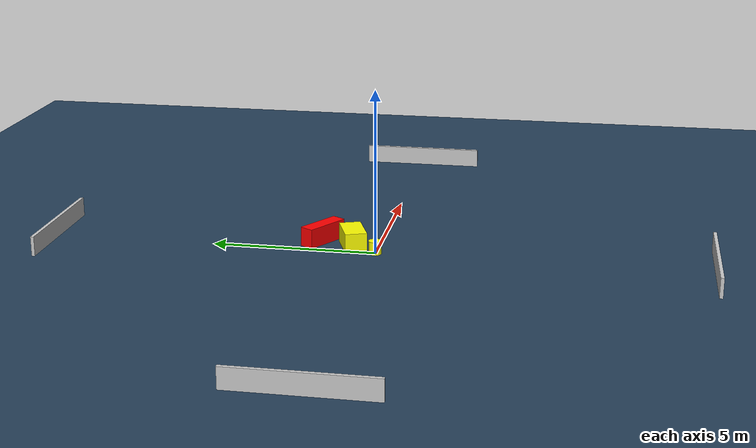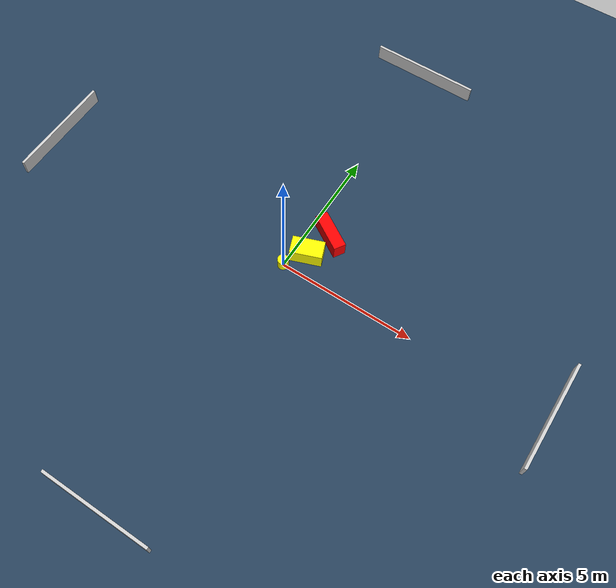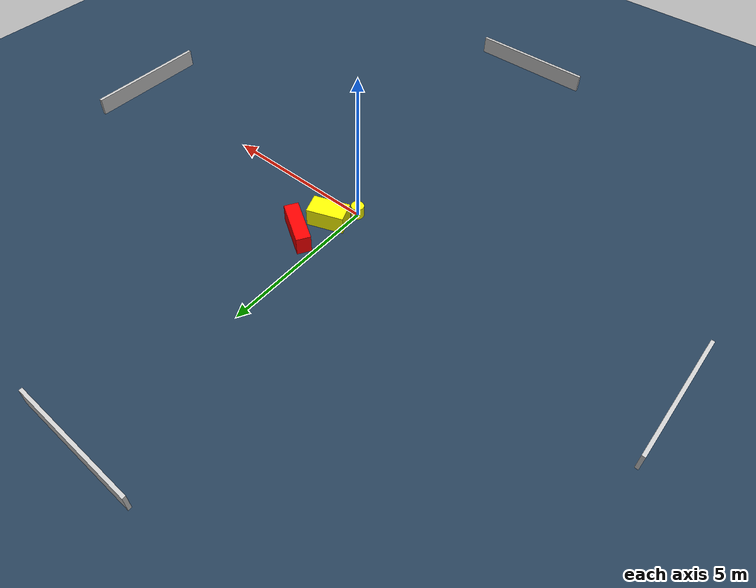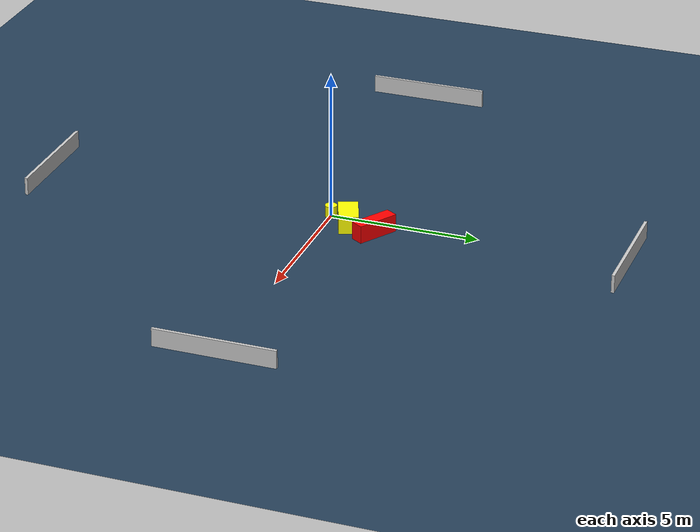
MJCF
<?xml version="1.0" ?>
<mujoco model="generated_environment">
  <option timestep="0.01" integrator="RK4" cone="elliptic"/>
  <default>
    <geom density="1"/>
  </default>
  <asset>
    <texture builtin="gradient" height="3072" name="skybox" rgb1="0.3 0.5 0.7" rgb2="0 0 0" type="skybox" width="512"/>
    <texture builtin="checker" height="300" name="groundplane" rgb1="0.2 0.3 0.4" rgb2="0.1 0.2 0.3" type="2d" width="300"/>
    <material name="groundplane" reflectance="0.2" texrepeat="5 5" texture="groundplane"/>
  </asset>
  <worldbody>
    <light dir="0 0 -1" directional="true" pos="0 0 1.5"/>
    <geom condim="3" friction="0.5 0.005 0.001" material="groundplane" name="floor" pos="0 0 0" size="0 0 0.05" type="plane"/>
    <body name="walls">
      <geom name="wall_1" condim="4" pos="-10.0 0.0 0.3" rgba="0.800000011920929 0.800000011920929 0.800000011920929 1.0" size="0.05 2.0 0.3" type="box"/>
      <geom name="wall_2" condim="4" pos="10.0 0.0 0.3" rgba="0.800000011920929 0.800000011920929 0.800000011920929 1.0" size="0.05 2.0 0.3" type="box"/>
      <geom name="wall_3" condim="4" pos="0.0 -10.0 0.3" rgba="0.800000011920929 0.800000011920929 0.800000011920929 1.0" size="2.0 0.05 0.3" type="box"/>
      <geom name="wall_4" condim="4" pos="0.0 10.0 0.3" rgba="0.800000011920929 0.800000011920929 0.800000011920929 1.0" size="2.0 0.05 0.3" type="box"/>
    </body>
    <body name="robot">
      <joint name="joint_x" type="slide" pos="0 0 0" axis="1 0 0"/>
      <joint name="joint_y" type="slide" pos="0 0 0" axis="0 1 0"/>
      <geom name="robot" type="cylinder" pos="0.0 0.0 0.2" size="0.2 0.2 0.0" mass="5.0" friction="1.0 0.005 0.0001" condim="4" rgba="1.0 1.0 0.0 1.0"/>
    </body>
    <body name="obstacle_1_movable">
      <geom name="obstacle_1_movable" condim="4" pos="0.4843435564480973 0.7708059824441946 0.3" euler="0 0 110.636765164982" friction="0.0 0.005 0.001" rgba="1.0 1.0 0.0 1.0" size="0.3297977691469323 0.5751115391891019 0.3" type="box" mass="0.1"/>
      <joint type="free"/>
    </body>
    <body name="obstacle_2_static">
      <geom name="obstacle_2_static" condim="4" pos="0.8036280992861272 1.7697398429888753 0.3" euler="0 0 58.23492823961198" friction="0.0 0.005 0.001" rgba="1.0 0.0 0.0 1.0" size="0.22213930461846482 0.723618157812089 0.3" type="box"/>
    </body>
  </worldbody>
  <actuator>
    <motor name="actuator_x" joint="joint_x" gear="1" ctrlrange="-1 1"/>
    <motor name="actuator_y" joint="joint_y" gear="1" ctrlrange="-1 1"/>
  </actuator>
</mujoco>
